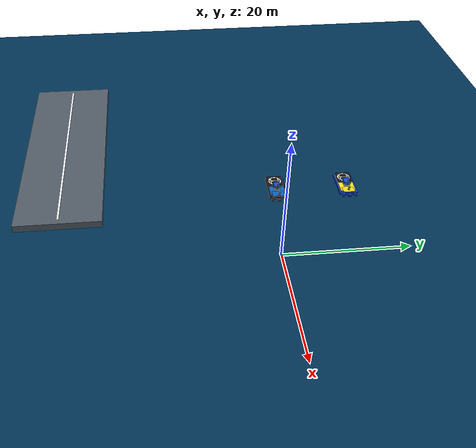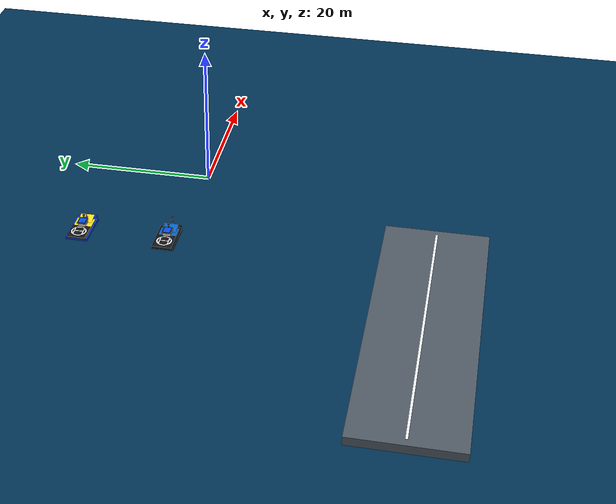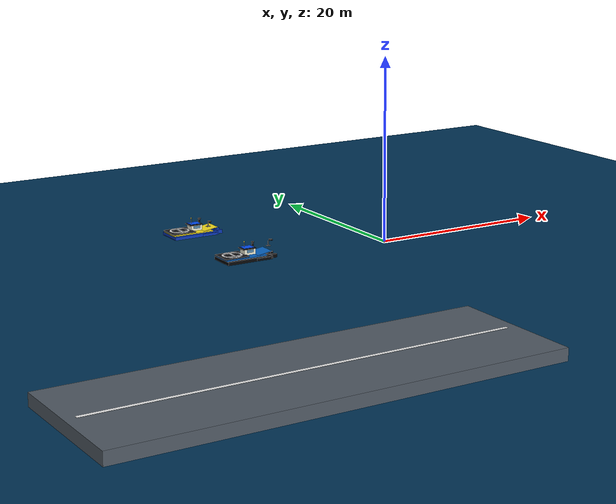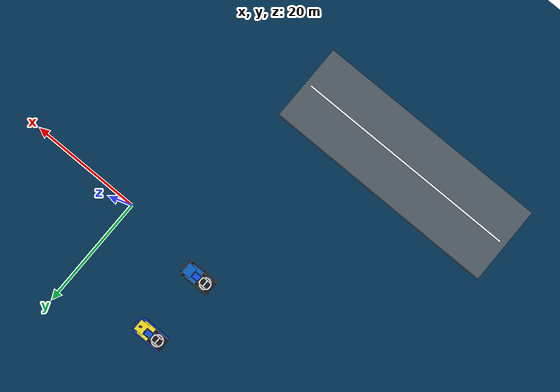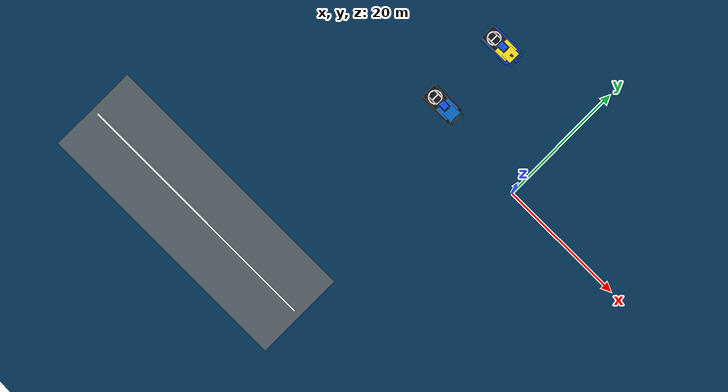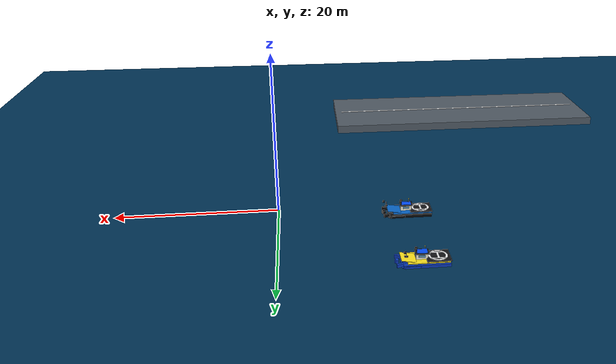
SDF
<sdf version="1.10">
 <world name="fleet_dynamic_capture">
  <plugin filename="gz-sim-physics-system" name="gz::sim::systems::Physics"/>
  <plugin filename="gz-sim-user-commands-system" name="gz::sim::systems::UserCommands"/>
  <plugin filename="gz-sim-scene-broadcaster-system" name="gz::sim::systems::SceneBroadcaster"/>
  <plugin filename="gz-sim-contact-system" name="gz::sim::systems::Contact"/>
  <plugin filename="gz-sim-sensors-system" name="gz::sim::systems::Sensors">
   <render_engine>ogre2</render_engine>
  </plugin>
  <plugin filename="gz-sim-imu-system" name="gz::sim::systems::Imu"/>
  <plugin filename="gz-sim-air-pressure-system" name="gz::sim::systems::AirPressure"/>
  <plugin filename="gz-sim-magnetometer-system" name="gz::sim::systems::Magnetometer"/>
  <plugin filename="gz-sim-navsat-system" name="gz::sim::systems::NavSat"/>
  <physics type="ode">
   <max_step_size>0.004</max_step_size>
   <real_time_factor>1</real_time_factor>
   <real_time_update_rate>250</real_time_update_rate>
  </physics>
  <gravity>0 0 -9.8</gravity>
  <scene>
   <grid>false</grid>
   <ambient>0.75 0.78 0.82 1</ambient>
   <background>0.82 0.9 0.96 1</background>
   <shadows>true</shadows>
  </scene>
  <spherical_coordinates>
   <surface_model>EARTH_WGS84</surface_model>
   <world_frame_orientation>ENU</world_frame_orientation>
   <latitude_deg>47.397971057728974</latitude_deg>
   <longitude_deg>8.5461637398001464</longitude_deg>
   <elevation>0</elevation>
   <heading_deg>0</heading_deg>
  </spherical_coordinates>
  <model name="ocean_plane">
   <static>true</static>
   <link name="ocean_link">
    <visual name="ocean_visual">
     <pose>0 0 -0.02 0 0 0</pose>
     <geometry><plane><normal>0 0 1</normal><size>800 800</size></plane></geometry>
     <material>
      <ambient>0 0.08 0.16 0.48</ambient>
      <diffuse>0 0.2 0.34 0.48</diffuse>
      <specular>0.05 0.08 0.1 1</specular>
     </material>
    </visual>
    <collision name="ocean_collision">
     <geometry><plane><normal>0 0 1</normal><size>800 800</size></plane></geometry>
    </collision>
   </link>
  </model>
  <model name="fleet_uav_launch_pad">
   <static>true</static>
   <pose>-30 -34 0 0 0 0</pose>
   <link name="pad">
    <collision name="pad_collision">
     <pose>0 0 0.6 0 0 0</pose>
     <geometry><box><size>42 14 1.2</size></box></geometry>
    </collision>
    <visual name="pad_visual">
     <pose>0 0 0.6 0 0 0</pose>
     <geometry><box><size>42 14 1.2</size></box></geometry>
     <material><ambient>0.18 0.2 0.22 1</ambient><diffuse>0.32 0.36 0.4 1</diffuse></material>
    </visual>
    <visual name="center_line">
     <pose>0 0 1.22 0 0 0</pose>
     <geometry><box><size>40 0.3 0.05</size></box></geometry>
     <material><ambient>1 1 1 1</ambient><diffuse>1 1 1 1</diffuse></material>
    </visual>
   </link>
  </model>
  <include><uri>model://defense_own_01_boat</uri><name>usv_01</name><pose>-16 2 0 0 0 0</pose></include>
  <include><uri>model://defense_own_02_boat</uri><name>usv_02</name><pose>-16 14 0 0 0 0</pose></include>
  <light name="sun" type="directional">
   <pose>0 0 80 0 0 0</pose>
   <intensity>1.1</intensity>
   <direction>-0.35 0.2 -0.92</direction>
   <diffuse>0.9 0.9 0.86 1</diffuse>
   <specular>0.25 0.25 0.25 1</specular>
  </light>
 </world>
</sdf>

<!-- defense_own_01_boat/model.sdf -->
<sdf version="1.8">
  <model name="defense_own_01_boat">
    <pose>0 0 0.4375 0 0 0</pose>

    <link name="hull">
      <enable_wind>true</enable_wind>
      <inertial>
        <mass>150.0</mass>
        <inertia>
          <ixx>85.0</ixx>
          <iyy>180.0</iyy>
          <izz>220.0</izz>
          <ixy>0</ixy>
          <ixz>0</ixz>
          <iyz>0</iyz>
        </inertia>
      </inertial>

      <collision name="hull_collision">
        <pose>0 0 -0.0625 0 0 0</pose>
        <geometry>
          <box>
            <size>5.61 3.135 0.625</size>
          </box>
        </geometry>
      </collision>

      <visual name="lower_hull">
        <pose>-0.0825 0 -0.2 0 0 0</pose>
        <geometry>
          <box>
            <size>5.3625 2.7225 0.35</size>
          </box>
        </geometry>
        <material>
          <ambient>0.015 0.015 0.018 1</ambient>
          <diffuse>0.025 0.025 0.030 1</diffuse>
          <specular>0.1 0.1 0.1 1</specular>
        </material>
      </visual>

      <visual name="upper_hull">
        <pose>-0.165 0 0.0625 0 0 0</pose>
        <geometry>
          <box>
            <size>5.1975 3.003 0.4</size>
          </box>
        </geometry>
        <material>
          <ambient>0.015 0.015 0.018 1</ambient>
          <diffuse>0.025 0.025 0.030 1</diffuse>
          <specular>0.18 0.18 0.2 1</specular>
        </material>
      </visual>

      <visual name="bow_side_left">
        <pose>2.409 0.858 0.05 0 0 0.31</pose>
        <geometry>
          <box>
            <size>1.518 0.264 0.475</size>
          </box>
        </geometry>
        <material>
          <ambient>0.015 0.015 0.018 1</ambient>
          <diffuse>0.025 0.025 0.030 1</diffuse>
          <specular>0.18 0.18 0.2 1</specular>
        </material>
      </visual>

      <visual name="bow_side_right">
        <pose>2.409 -0.858 0.05 0 0 -0.31</pose>
        <geometry>
          <box>
            <size>1.518 0.264 0.475</size>
          </box>
        </geometry>
        <material>
          <ambient>0.015 0.015 0.018 1</ambient>
          <diffuse>0.025 0.025 0.030 1</diffuse>
          <specular>0.18 0.18 0.2 1</specular>
        </material>
      </visual>

      <visual name="bow_center_nose">
        <pose>3.003 0 0.05 0 0 0</pose>
        <geometry>
          <box>
            <size>0.33 0.528 0.5</size>
          </box>
        </geometry>
        <material>
          <ambient>0.015 0.015 0.018 1</ambient>
          <diffuse>0.025 0.025 0.030 1</diffuse>
          <specular>0.16 0.16 0.18 1</specular>
        </material>
      </visual>

      <visual name="bow_keel_line">
        <pose>2.5575 0 -0.425 0 1.5708 0</pose>
        <geometry>
          <cylinder>
            <radius>0.035</radius>
            <length>0.9</length>
          </cylinder>
        </geometry>
        <material>
          <ambient>0.006 0.006 0.008 1</ambient>
          <diffuse>0.012 0.012 0.014 1</diffuse>
        </material>
      </visual>

      <visual name="foredeck_slope">
        <pose>1.7325 0 0.45 0 -0.16 0</pose>
        <geometry>
          <box>
            <size>1.815 1.914 0.06875</size>
          </box>
        </geometry>
        <material>
          <ambient>0.02 0.18 0.35 1</ambient>
          <diffuse>0.03 0.40 0.78 1</diffuse>
          <specular>0.08 0.08 0.08 1</specular>
        </material>
      </visual>

      <visual name="bow_stem">
        <pose>3.201 0 0.0375 0 0 0</pose>
        <geometry>
          <box>
            <size>0.132 0.198 0.525</size>
          </box>
        </geometry>
        <material>
          <ambient>0.015 0.015 0.018 1</ambient>
          <diffuse>0.025 0.025 0.030 1</diffuse>
          <specular>0.16 0.16 0.18 1</specular>
        </material>
      </visual>

      <visual name="hull_side_fairing_left">
        <pose>0.0825 1.419 0.05 0 0 0.035</pose>
        <geometry>
          <box>
            <size>4.3725 0.132 0.275</size>
          </box>
        </geometry>
        <material>
          <ambient>0.015 0.015 0.018 1</ambient>
          <diffuse>0.025 0.025 0.030 1</diffuse>
          <specular>0.14 0.14 0.16 1</specular>
        </material>
      </visual>

      <visual name="hull_side_fairing_right">
        <pose>0.0825 -1.419 0.05 0 0 -0.035</pose>
        <geometry>
          <box>
            <size>4.3725 0.132 0.275</size>
          </box>
        </geometry>
        <material>
          <ambient>0.015 0.015 0.018 1</ambient>
          <diffuse>0.025 0.025 0.030 1</diffuse>
          <specular>0.14 0.14 0.16 1</specular>
        </material>
      </visual>

      <visual name="deck">
        <pose>-0.4125 0 0.3125 0 0 0</pose>
        <geometry>
          <box>
            <size>4.7025 2.475 0.1</size>
          </box>
        </geometry>
        <material>
          <ambient>0.02 0.18 0.35 1</ambient>
          <diffuse>0.03 0.40 0.78 1</diffuse>
          <specular>0.08 0.08 0.08 1</specular>
        </material>
      </visual>

      <visual name="cabin_body">
        <pose>0.33 0 0.725 0 0 0</pose>
        <geometry>
          <box>
            <size>1.287 1.023 0.6</size>
          </box>
        </geometry>
        <material>
          <ambient>0.86 0.86 0.8 1</ambient>
          <diffuse>0.96 0.95 0.86 1</diffuse>
          <specular>0.28 0.28 0.24 1</specular>
        </material>
      </visual>

      <visual name="front_window">
        <pose>0.99 0 0.8 0 0.28 0</pose>
        <geometry>
          <box>
            <size>0.05775 0.792 0.3</size>
          </box>
        </geometry>
        <material>
          <ambient>0.05 0.22 0.36 0.65</ambient>
          <diffuse>0.08 0.38 0.62 0.65</diffuse>
          <specular>0.9 0.95 1 1</specular>
        </material>
      </visual>

      <visual name="left_window">
        <pose>0.33 0.53625 0.8 0 0 0</pose>
        <geometry>
          <box>
            <size>0.7425 0.04125 0.275</size>
          </box>
        </geometry>
        <material>
          <ambient>0.05 0.22 0.36 0.65</ambient>
          <diffuse>0.08 0.38 0.62 0.65</diffuse>
          <specular>0.9 0.95 1 1</specular>
        </material>
      </visual>

      <visual name="right_window">
        <pose>0.33 -0.53625 0.8 0 0 0</pose>
        <geometry>
          <box>
            <size>0.7425 0.04125 0.275</size>
          </box>
        </geometry>
        <material>
          <ambient>0.05 0.22 0.36 0.65</ambient>
          <diffuse>0.08 0.38 0.62 0.65</diffuse>
          <specular>0.9 0.95 1 1</specular>
        </material>
      </visual>

      <visual name="cabin_roof">
        <pose>0.2475 0 1.0625 0 0 0</pose>
        <geometry>
          <box>
            <size>1.518 1.188 0.1</size>
          </box>
        </geometry>
        <material>
          <ambient>0.08 0.08 0.08 1</ambient>
          <diffuse>0.12 0.12 0.12 1</diffuse>
          <specular>0.18 0.18 0.18 1</specular>
        </material>
      </visual>

      <!-- Visual-only friendly identity plate. -->
      <visual name="friendly_identity_roof">
        <pose>0.2475 0 1.13 0 0 0</pose>
        <geometry><box><size>1.20 0.92 0.08</size></box></geometry>
        <material>
          <ambient>0.01 0.18 0.85 1</ambient>
          <diffuse>0.02 0.32 1.0 1</diffuse>
          <emissive>0 0.05 0.30 1</emissive>
        </material>
      </visual>

      <collision name="landing_pad_collision">
        <pose>-1.518 0 0.45 0 0 0</pose>
        <geometry>
          <box>
            <size>2.805 2.5575 0.3</size>
          </box>
        </geometry>
        <surface>
          <contact>
            <ode>
              <min_depth>0.001</min_depth>
              <max_vel>0</max_vel>
            </ode>
          </contact>
          <friction>
            <ode>
              <mu>1.5</mu>
              <mu2>1.5</mu2>
            </ode>
          </friction>
        </surface>
      </collision>

      <visual name="landing_pad_visual">
        <pose>-1.518 0 0.475 0 0 0</pose>
        <geometry>
          <box>
            <size>2.72 2.46 0.1</size>
          </box>
        </geometry>
        <material>
          <ambient>0.04 0.04 0.045 1</ambient>
          <diffuse>0.08 0.08 0.09 1</diffuse>
          <specular>0.08 0.08 0.08 1</specular>
        </material>
      </visual>

      <visual name="landing_pad_ring">
        <pose>-1.518 0 0.54375 0 0 0</pose>
        <geometry>
          <cylinder>
            <radius>1.08</radius>
            <length>0.015</length>
          </cylinder>
        </geometry>
        <material>
          <ambient>1 1 1 1</ambient>
          <diffuse>1 1 1 1</diffuse>
        </material>
      </visual>

      <visual name="landing_pad_center">
        <pose>-1.518 0 0.55625 0 0 0</pose>
        <geometry>
          <cylinder>
            <radius>0.86</radius>
            <length>0.0175</length>
          </cylinder>
        </geometry>
        <material>
          <ambient>0.04 0.04 0.045 1</ambient>
          <diffuse>0.08 0.08 0.09 1</diffuse>
        </material>
      </visual>

      <visual name="landing_h_left">
        <pose>-1.518 0.62 0.5725 0 0 0</pose>
        <geometry>
          <box>
            <size>1.55 0.18 0.015</size>
          </box>
        </geometry>
        <material>
          <ambient>1 1 1 1</ambient>
          <diffuse>1 1 1 1</diffuse>
        </material>
      </visual>

      <visual name="landing_h_right">
        <pose>-1.518 -0.62 0.5725 0 0 0</pose>
        <geometry>
          <box>
            <size>1.55 0.18 0.015</size>
          </box>
        </geometry>
        <material>
          <ambient>1 1 1 1</ambient>
          <diffuse>1 1 1 1</diffuse>
        </material>
      </visual>

      <visual name="landing_h_crossbar">
        <pose>-1.518 0 0.5775 0 0 0</pose>
        <geometry>
          <box>
            <size>0.2 1.42 0.015</size>
          </box>
        </geometry>
        <material>
          <ambient>1 1 1 1</ambient>
          <diffuse>1 1 1 1</diffuse>
        </material>
      </visual>

      <visual name="mast">
        <pose>-0.0825 0 1.375 0 0 0</pose>
        <geometry>
          <cylinder>
            <radius>0.0225</radius>
            <length>0.6875</length>
          </cylinder>
        </geometry>
        <material>
          <ambient>0.02 0.02 0.02 1</ambient>
          <diffuse>0.02 0.02 0.02 1</diffuse>
        </material>
      </visual>

      <visual name="nav_light">
        <pose>-0.0825 0 1.7375 0 0 0</pose>
        <geometry>
          <sphere>
            <radius>0.06875</radius>
          </sphere>
        </geometry>
        <material>
          <ambient>1 0.85 0.25 1</ambient>
          <diffuse>1 0.85 0.25 1</diffuse>
          <specular>1 0.9 0.5 1</specular>
        </material>
      </visual>

      <visual name="lidar_mount">
        <pose>0.9075 0 1.175 0 0 0</pose>
        <geometry>
          <cylinder>
            <radius>0.1125</radius>
            <length>0.775</length>
          </cylinder>
        </geometry>
        <material>
          <ambient>0.02 0.02 0.022 1</ambient>
          <diffuse>0.04 0.04 0.045 1</diffuse>
          <specular>0.2 0.2 0.22 1</specular>
        </material>
      </visual>

      <visual name="lidar_body">
        <pose>0.9075 0 1.5875 0 0 0</pose>
        <geometry>
          <cylinder>
            <radius>0.175</radius>
            <length>0.1</length>
          </cylinder>
        </geometry>
        <material>
          <ambient>0.01 0.01 0.012 1</ambient>
          <diffuse>0.02 0.02 0.024 1</diffuse>
          <specular>0.35 0.35 0.38 1</specular>
        </material>
      </visual>

      <visual name="front_camera_mount_base">
        <pose>2.75 0 0.95 0 0 0</pose>
        <geometry>
          <box>
            <size>0.396 0.33 0.05</size>
          </box>
        </geometry>
        <material>
          <ambient>0.025 0.025 0.028 1</ambient>
          <diffuse>0.04 0.04 0.045 1</diffuse>
          <specular>0.18 0.18 0.2 1</specular>
        </material>
      </visual>

      <visual name="front_camera_mount_post">
        <pose>2.75 0 1.25 0 0 0</pose>
        <geometry>
          <cylinder>
            <radius>0.04375</radius>
            <length>0.4375</length>
          </cylinder>
        </geometry>
        <material>
          <ambient>0.018 0.018 0.02 1</ambient>
          <diffuse>0.03 0.03 0.034 1</diffuse>
          <specular>0.18 0.18 0.2 1</specular>
        </material>
      </visual>

      <visual name="front_camera_body">
        <pose>3.05 0 1.55 0 0 0</pose>
        <geometry>
          <box>
            <size>0.264 0.297 0.15</size>
          </box>
        </geometry>
        <material>
          <ambient>0.015 0.015 0.018 1</ambient>
          <diffuse>0.025 0.025 0.03 1</diffuse>
          <specular>0.2 0.2 0.22 1</specular>
        </material>
      </visual>

      <visual name="front_camera_lens">
        <pose>3.20 0 1.55 0 1.5708 0</pose>
        <geometry>
          <cylinder>
            <radius>0.05625</radius>
            <length>0.03125</length>
          </cylinder>
        </geometry>
        <material>
          <ambient>0.02 0.04 0.06 1</ambient>
          <diffuse>0.03 0.08 0.12 1</diffuse>
          <specular>0.8 0.9 1 1</specular>
        </material>
      </visual>

      <sensor name="front_camera" type="camera">
        <pose>3.24 0 1.55 0 0 0</pose>
        <topic>/defense/own_01/front_camera</topic>
        <update_rate>30</update_rate>
        <camera>
          <horizontal_fov>1.047</horizontal_fov>
          <image>
            <width>240</width>
            <height>135</height>
            <format>B8G8R8</format>
          </image>
          <clip>
            <near>0.05</near>
            <far>200</far>
          </clip>
        </camera>
        <always_on>true</always_on>
        <visualize>false</visualize>
      </sensor>

      <sensor name="front_lidar" type="gpu_lidar">
        <gz_frame_id>own_01/hull/front_lidar</gz_frame_id>
        <pose>0.9075 0 1.5625 0 0 0</pose>
        <topic>/defense/own_01/scan</topic>
        <update_rate>10</update_rate>
        <ray>
          <scan>
            <horizontal>
              <samples>361</samples>
              <resolution>1</resolution>
              <min_angle>-1.5708</min_angle>
              <max_angle>1.5708</max_angle>
            </horizontal>
          </scan>
          <range>
            <min>0.35</min>
            <max>80</max>
            <resolution>0.02</resolution>
          </range>
          <noise>
            <type>gaussian</type>
            <mean>0</mean>
            <stddev>0.01</stddev>
          </noise>
          <visibility_mask>0x01</visibility_mask>
        </ray>
        <always_on>true</always_on>
        <visualize>false</visualize>
      </sensor>
    </link>

    <plugin
      filename="gz-sim-velocity-control-system"
      name="gz::sim::systems::VelocityControl">
      <topic>/model/own_01/cmd_vel</topic>
      <control_linear_velocity>true</control_linear_velocity>
      <control_angular_velocity>true</control_angular_velocity>
    </plugin>

    <plugin
      filename="gz-sim-pose-publisher-system"
      name="gz::sim::systems::PosePublisher">
      <publish_model_pose>true</publish_model_pose>
      <publish_link_pose>false</publish_link_pose>
      <publish_collision_pose>false</publish_collision_pose>
      <publish_visual_pose>false</publish_visual_pose>
      <publish_nested_model_pose>false</publish_nested_model_pose>
      <publish_sensor_pose>false</publish_sensor_pose>
      <use_pose_vector_msg>false</use_pose_vector_msg>
      /defense/own_01/pose
      <update_frequency>30</update_frequency>
    </plugin>

    <plugin
      filename="libBoatWaveFollower.so"
      name="gz::sim::systems::BoatWaveFollower">
      <mean_z>0.55</mean_z>
      <heave_amplitude>0.11</heave_amplitude>
      <roll_amplitude>0.055</roll_amplitude>
      <pitch_amplitude>0.045</pitch_amplitude>
      <primary_frequency>1.1</primary_frequency>
      <secondary_frequency>1.7</secondary_frequency>
      <wave_number_x>0.35</wave_number_x>
      <wave_number_y>0.22</wave_number_y>
    </plugin>
  </model>
</sdf>

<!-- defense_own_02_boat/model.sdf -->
<sdf version="1.8">
  <model name="defense_own_02_boat">
    <pose>0 0 0.4375 0 0 0</pose>

    <link name="hull">
      <enable_wind>true</enable_wind>
      <inertial>
        <mass>150.0</mass>
        <inertia>
          <ixx>85.0</ixx>
          <iyy>180.0</iyy>
          <izz>220.0</izz>
          <ixy>0</ixy>
          <ixz>0</ixz>
          <iyz>0</iyz>
        </inertia>
      </inertial>

      <collision name="hull_collision">
        <pose>0 0 -0.0625 0 0 0</pose>
        <geometry>
          <box>
            <size>5.61 3.135 0.625</size>
          </box>
        </geometry>
      </collision>

      <visual name="lower_hull">
        <pose>-0.0825 0 -0.2 0 0 0</pose>
        <geometry>
          <box>
            <size>5.3625 2.7225 0.35</size>
          </box>
        </geometry>
        <material>
          <ambient>0.02 0.10 0.28 1</ambient>
          <diffuse>0.04 0.22 0.72 1</diffuse>
          <specular>0.1 0.1 0.1 1</specular>
        </material>
      </visual>

      <visual name="upper_hull">
        <pose>-0.165 0 0.0625 0 0 0</pose>
        <geometry>
          <box>
            <size>5.1975 3.003 0.4</size>
          </box>
        </geometry>
        <material>
          <ambient>0.02 0.10 0.28 1</ambient>
          <diffuse>0.04 0.22 0.72 1</diffuse>
          <specular>0.18 0.18 0.2 1</specular>
        </material>
      </visual>

      <visual name="bow_side_left">
        <pose>2.409 0.858 0.05 0 0 0.31</pose>
        <geometry>
          <box>
            <size>1.518 0.264 0.475</size>
          </box>
        </geometry>
        <material>
          <ambient>0.02 0.10 0.28 1</ambient>
          <diffuse>0.04 0.22 0.72 1</diffuse>
          <specular>0.18 0.18 0.2 1</specular>
        </material>
      </visual>

      <visual name="bow_side_right">
        <pose>2.409 -0.858 0.05 0 0 -0.31</pose>
        <geometry>
          <box>
            <size>1.518 0.264 0.475</size>
          </box>
        </geometry>
        <material>
          <ambient>0.02 0.10 0.28 1</ambient>
          <diffuse>0.04 0.22 0.72 1</diffuse>
          <specular>0.18 0.18 0.2 1</specular>
        </material>
      </visual>

      <visual name="bow_center_nose">
        <pose>3.003 0 0.05 0 0 0</pose>
        <geometry>
          <box>
            <size>0.33 0.528 0.5</size>
          </box>
        </geometry>
        <material>
          <ambient>0.02 0.10 0.28 1</ambient>
          <diffuse>0.04 0.22 0.72 1</diffuse>
          <specular>0.16 0.16 0.18 1</specular>
        </material>
      </visual>

      <visual name="bow_keel_line">
        <pose>2.5575 0 -0.425 0 1.5708 0</pose>
        <geometry>
          <cylinder>
            <radius>0.035</radius>
            <length>0.9</length>
          </cylinder>
        </geometry>
        <material>
          <ambient>0.006 0.006 0.008 1</ambient>
          <diffuse>0.012 0.012 0.014 1</diffuse>
        </material>
      </visual>

      <visual name="foredeck_slope">
        <pose>1.7325 0 0.45 0 -0.16 0</pose>
        <geometry>
          <box>
            <size>1.815 1.914 0.06875</size>
          </box>
        </geometry>
        <material>
          <ambient>0.75 0.75 0.08 1</ambient>
          <diffuse>1.00 0.90 0.12 1</diffuse>
          <specular>0.08 0.08 0.08 1</specular>
        </material>
      </visual>

      <visual name="bow_stem">
        <pose>3.201 0 0.0375 0 0 0</pose>
        <geometry>
          <box>
            <size>0.132 0.198 0.525</size>
          </box>
        </geometry>
        <material>
          <ambient>0.02 0.10 0.28 1</ambient>
          <diffuse>0.04 0.22 0.72 1</diffuse>
          <specular>0.16 0.16 0.18 1</specular>
        </material>
      </visual>

      <visual name="hull_side_fairing_left">
        <pose>0.0825 1.419 0.05 0 0 0.035</pose>
        <geometry>
          <box>
            <size>4.3725 0.132 0.275</size>
          </box>
        </geometry>
        <material>
          <ambient>0.02 0.10 0.28 1</ambient>
          <diffuse>0.04 0.22 0.72 1</diffuse>
          <specular>0.14 0.14 0.16 1</specular>
        </material>
      </visual>

      <visual name="hull_side_fairing_right">
        <pose>0.0825 -1.419 0.05 0 0 -0.035</pose>
        <geometry>
          <box>
            <size>4.3725 0.132 0.275</size>
          </box>
        </geometry>
        <material>
          <ambient>0.02 0.10 0.28 1</ambient>
          <diffuse>0.04 0.22 0.72 1</diffuse>
          <specular>0.14 0.14 0.16 1</specular>
        </material>
      </visual>

      <visual name="deck">
        <pose>-0.4125 0 0.3125 0 0 0</pose>
        <geometry>
          <box>
            <size>4.7025 2.475 0.1</size>
          </box>
        </geometry>
        <material>
          <ambient>0.75 0.75 0.08 1</ambient>
          <diffuse>1.00 0.90 0.12 1</diffuse>
          <specular>0.08 0.08 0.08 1</specular>
        </material>
      </visual>

      <visual name="cabin_body">
        <pose>0.33 0 0.725 0 0 0</pose>
        <geometry>
          <box>
            <size>1.287 1.023 0.6</size>
          </box>
        </geometry>
        <material>
          <ambient>0.86 0.86 0.8 1</ambient>
          <diffuse>0.96 0.95 0.86 1</diffuse>
          <specular>0.28 0.28 0.24 1</specular>
        </material>
      </visual>

      <visual name="front_window">
        <pose>0.99 0 0.8 0 0.28 0</pose>
        <geometry>
          <box>
            <size>0.05775 0.792 0.3</size>
          </box>
        </geometry>
        <material>
          <ambient>0.05 0.22 0.36 0.65</ambient>
          <diffuse>0.08 0.38 0.62 0.65</diffuse>
          <specular>0.9 0.95 1 1</specular>
        </material>
      </visual>

      <visual name="left_window">
        <pose>0.33 0.53625 0.8 0 0 0</pose>
        <geometry>
          <box>
            <size>0.7425 0.04125 0.275</size>
          </box>
        </geometry>
        <material>
          <ambient>0.05 0.22 0.36 0.65</ambient>
          <diffuse>0.08 0.38 0.62 0.65</diffuse>
          <specular>0.9 0.95 1 1</specular>
        </material>
      </visual>

      <visual name="right_window">
        <pose>0.33 -0.53625 0.8 0 0 0</pose>
        <geometry>
          <box>
            <size>0.7425 0.04125 0.275</size>
          </box>
        </geometry>
        <material>
          <ambient>0.05 0.22 0.36 0.65</ambient>
          <diffuse>0.08 0.38 0.62 0.65</diffuse>
          <specular>0.9 0.95 1 1</specular>
        </material>
      </visual>

      <visual name="cabin_roof">
        <pose>0.2475 0 1.0625 0 0 0</pose>
        <geometry>
          <box>
            <size>1.518 1.188 0.1</size>
          </box>
        </geometry>
        <material>
          <ambient>0.08 0.08 0.08 1</ambient>
          <diffuse>0.12 0.12 0.12 1</diffuse>
          <specular>0.18 0.18 0.18 1</specular>
        </material>
      </visual>

      <!-- Visual-only friendly identity plate. -->
      <visual name="friendly_identity_roof">
        <pose>0.2475 0 1.13 0 0 0</pose>
        <geometry><box><size>1.20 0.92 0.08</size></box></geometry>
        <material>
          <ambient>0.01 0.18 0.85 1</ambient>
          <diffuse>0.02 0.32 1.0 1</diffuse>
          <emissive>0 0.05 0.30 1</emissive>
        </material>
      </visual>

      <collision name="landing_pad_collision">
        <pose>-1.518 0 0.45 0 0 0</pose>
        <geometry>
          <box>
            <size>2.805 2.5575 0.3</size>
          </box>
        </geometry>
        <surface>
          <contact>
            <ode>
              <min_depth>0.001</min_depth>
              <max_vel>0</max_vel>
            </ode>
          </contact>
          <friction>
            <ode>
              <mu>1.5</mu>
              <mu2>1.5</mu2>
            </ode>
          </friction>
        </surface>
      </collision>

      <visual name="landing_pad_visual">
        <pose>-1.518 0 0.475 0 0 0</pose>
        <geometry>
          <box>
            <size>2.72 2.46 0.1</size>
          </box>
        </geometry>
        <material>
          <ambient>0.04 0.04 0.045 1</ambient>
          <diffuse>0.08 0.08 0.09 1</diffuse>
          <specular>0.08 0.08 0.08 1</specular>
        </material>
      </visual>

      <visual name="landing_pad_ring">
        <pose>-1.518 0 0.54375 0 0 0</pose>
        <geometry>
          <cylinder>
            <radius>1.08</radius>
            <length>0.015</length>
          </cylinder>
        </geometry>
        <material>
          <ambient>1 1 1 1</ambient>
          <diffuse>1 1 1 1</diffuse>
        </material>
      </visual>

      <visual name="landing_pad_center">
        <pose>-1.518 0 0.55625 0 0 0</pose>
        <geometry>
          <cylinder>
            <radius>0.86</radius>
            <length>0.0175</length>
          </cylinder>
        </geometry>
        <material>
          <ambient>0.04 0.04 0.045 1</ambient>
          <diffuse>0.08 0.08 0.09 1</diffuse>
        </material>
      </visual>

      <visual name="landing_h_left">
        <pose>-1.518 0.62 0.5725 0 0 0</pose>
        <geometry>
          <box>
            <size>1.55 0.18 0.015</size>
          </box>
        </geometry>
        <material>
          <ambient>1 1 1 1</ambient>
          <diffuse>1 1 1 1</diffuse>
        </material>
      </visual>

      <visual name="landing_h_right">
        <pose>-1.518 -0.62 0.5725 0 0 0</pose>
        <geometry>
          <box>
            <size>1.55 0.18 0.015</size>
          </box>
        </geometry>
        <material>
          <ambient>1 1 1 1</ambient>
          <diffuse>1 1 1 1</diffuse>
        </material>
      </visual>

      <visual name="landing_h_crossbar">
        <pose>-1.518 0 0.5775 0 0 0</pose>
        <geometry>
          <box>
            <size>0.2 1.42 0.015</size>
          </box>
        </geometry>
        <material>
          <ambient>1 1 1 1</ambient>
          <diffuse>1 1 1 1</diffuse>
        </material>
      </visual>

      <visual name="mast">
        <pose>-0.0825 0 1.375 0 0 0</pose>
        <geometry>
          <cylinder>
            <radius>0.0225</radius>
            <length>0.6875</length>
          </cylinder>
        </geometry>
        <material>
          <ambient>0.02 0.02 0.02 1</ambient>
          <diffuse>0.02 0.02 0.02 1</diffuse>
        </material>
      </visual>

      <visual name="nav_light">
        <pose>-0.0825 0 1.7375 0 0 0</pose>
        <geometry>
          <sphere>
            <radius>0.06875</radius>
          </sphere>
        </geometry>
        <material>
          <ambient>1 0.85 0.25 1</ambient>
          <diffuse>1 0.85 0.25 1</diffuse>
          <specular>1 0.9 0.5 1</specular>
        </material>
      </visual>

      <visual name="lidar_mount">
        <pose>0.9075 0 1.175 0 0 0</pose>
        <geometry>
          <cylinder>
            <radius>0.1125</radius>
            <length>0.775</length>
          </cylinder>
        </geometry>
        <material>
          <ambient>0.02 0.02 0.022 1</ambient>
          <diffuse>0.04 0.04 0.045 1</diffuse>
          <specular>0.2 0.2 0.22 1</specular>
        </material>
      </visual>

      <visual name="lidar_body">
        <pose>0.9075 0 1.5875 0 0 0</pose>
        <geometry>
          <cylinder>
            <radius>0.175</radius>
            <length>0.1</length>
          </cylinder>
        </geometry>
        <material>
          <ambient>0.01 0.01 0.012 1</ambient>
          <diffuse>0.02 0.02 0.024 1</diffuse>
          <specular>0.35 0.35 0.38 1</specular>
        </material>
      </visual>

      <visual name="front_camera_mount_base">
        <pose>1.98 0 0.56875 0 0 0</pose>
        <geometry>
          <box>
            <size>0.396 0.33 0.05</size>
          </box>
        </geometry>
        <material>
          <ambient>0.025 0.025 0.028 1</ambient>
          <diffuse>0.04 0.04 0.045 1</diffuse>
          <specular>0.18 0.18 0.2 1</specular>
        </material>
      </visual>

      <visual name="front_camera_mount_post">
        <pose>1.98 0 0.8125 0 0 0</pose>
        <geometry>
          <cylinder>
            <radius>0.04375</radius>
            <length>0.4375</length>
          </cylinder>
        </geometry>
        <material>
          <ambient>0.018 0.018 0.02 1</ambient>
          <diffuse>0.03 0.03 0.034 1</diffuse>
          <specular>0.18 0.18 0.2 1</specular>
        </material>
      </visual>

      <visual name="front_camera_body">
        <pose>2.1285 0 1.075 0 0 0</pose>
        <geometry>
          <box>
            <size>0.264 0.297 0.15</size>
          </box>
        </geometry>
        <material>
          <ambient>0.015 0.015 0.018 1</ambient>
          <diffuse>0.025 0.025 0.03 1</diffuse>
          <specular>0.2 0.2 0.22 1</specular>
        </material>
      </visual>

      <visual name="front_camera_lens">
        <pose>2.28525 0 1.075 0 1.5708 0</pose>
        <geometry>
          <cylinder>
            <radius>0.05625</radius>
            <length>0.03125</length>
          </cylinder>
        </geometry>
        <material>
          <ambient>0.02 0.04 0.06 1</ambient>
          <diffuse>0.03 0.08 0.12 1</diffuse>
          <specular>0.8 0.9 1 1</specular>
        </material>
      </visual>

      <sensor name="front_camera" type="camera">
        <pose>2.31825 0 1.075 0 0 0</pose>
        <topic>/defense/own_02/front_camera</topic>
        <update_rate>30</update_rate>
        <camera>
          <horizontal_fov>1.047</horizontal_fov>
          <image>
            <width>240</width>
            <height>135</height>
            <format>B8G8R8</format>
          </image>
          <clip>
            <near>0.05</near>
            <far>200</far>
          </clip>
        </camera>
        <always_on>true</always_on>
        <visualize>false</visualize>
      </sensor>

      <sensor name="front_lidar" type="gpu_lidar">
        <gz_frame_id>own_02/hull/front_lidar</gz_frame_id>
        <pose>0.9075 0 1.5625 0 0 0</pose>
        <topic>/defense/own_02/scan</topic>
        <update_rate>10</update_rate>
        <ray>
          <scan>
            <horizontal>
              <samples>361</samples>
              <resolution>1</resolution>
              <min_angle>-1.5708</min_angle>
              <max_angle>1.5708</max_angle>
            </horizontal>
          </scan>
          <range>
            <min>0.35</min>
            <max>80</max>
            <resolution>0.02</resolution>
          </range>
          <noise>
            <type>gaussian</type>
            <mean>0</mean>
            <stddev>0.01</stddev>
          </noise>
          <visibility_mask>0x01</visibility_mask>
        </ray>
        <always_on>true</always_on>
        <visualize>false</visualize>
      </sensor>
    </link>

    <plugin
      filename="gz-sim-velocity-control-system"
      name="gz::sim::systems::VelocityControl">
      <topic>/model/own_02/cmd_vel</topic>
      <control_linear_velocity>true</control_linear_velocity>
      <control_angular_velocity>true</control_angular_velocity>
    </plugin>

    <plugin
      filename="gz-sim-pose-publisher-system"
      name="gz::sim::systems::PosePublisher">
      <publish_model_pose>true</publish_model_pose>
      <publish_link_pose>false</publish_link_pose>
      <publish_collision_pose>false</publish_collision_pose>
      <publish_visual_pose>false</publish_visual_pose>
      <publish_nested_model_pose>false</publish_nested_model_pose>
      <publish_sensor_pose>false</publish_sensor_pose>
      <use_pose_vector_msg>false</use_pose_vector_msg>
      /defense/own_02/pose
      <update_frequency>30</update_frequency>
    </plugin>

    <plugin
      filename="libBoatWaveFollower.so"
      name="gz::sim::systems::BoatWaveFollower">
      <mean_z>0.55</mean_z>
      <heave_amplitude>0.11</heave_amplitude>
      <roll_amplitude>0.055</roll_amplitude>
      <pitch_amplitude>0.045</pitch_amplitude>
      <primary_frequency>1.1</primary_frequency>
      <secondary_frequency>1.7</secondary_frequency>
      <wave_number_x>0.35</wave_number_x>
      <wave_number_y>0.22</wave_number_y>
    </plugin>
  </model>
</sdf>
